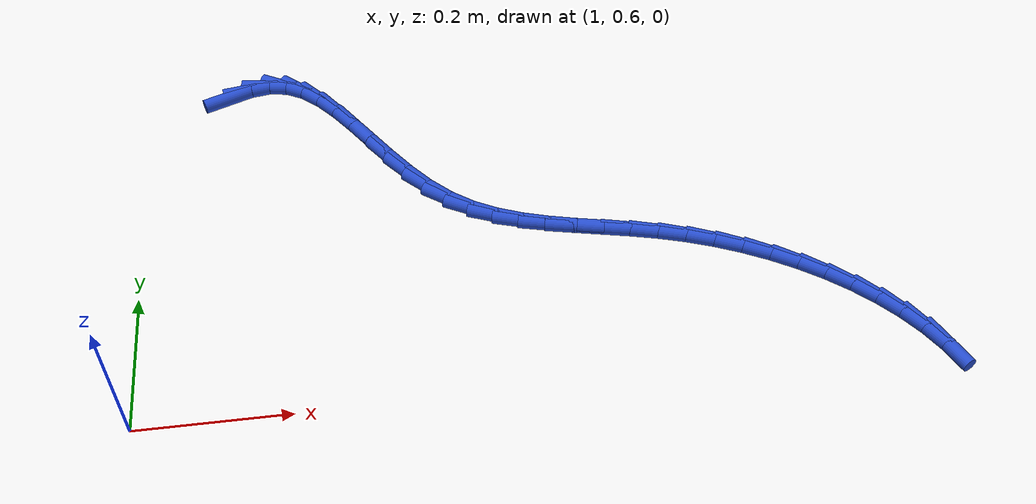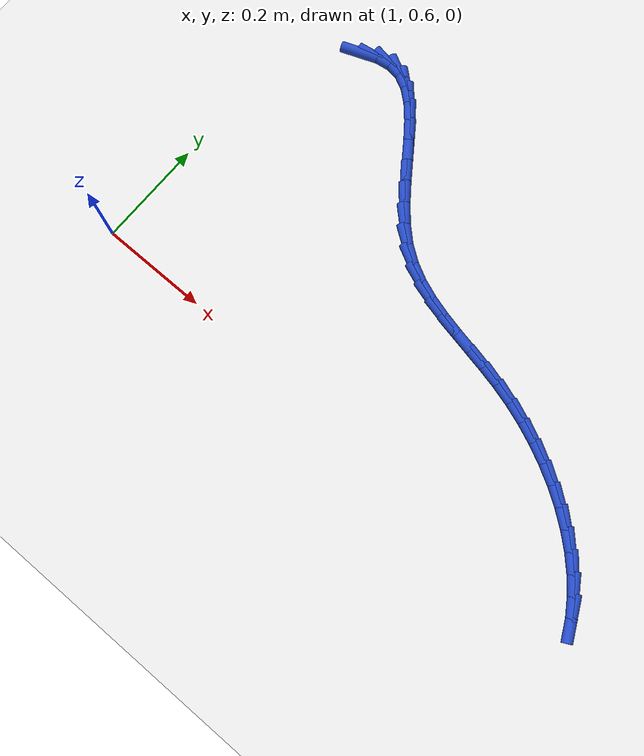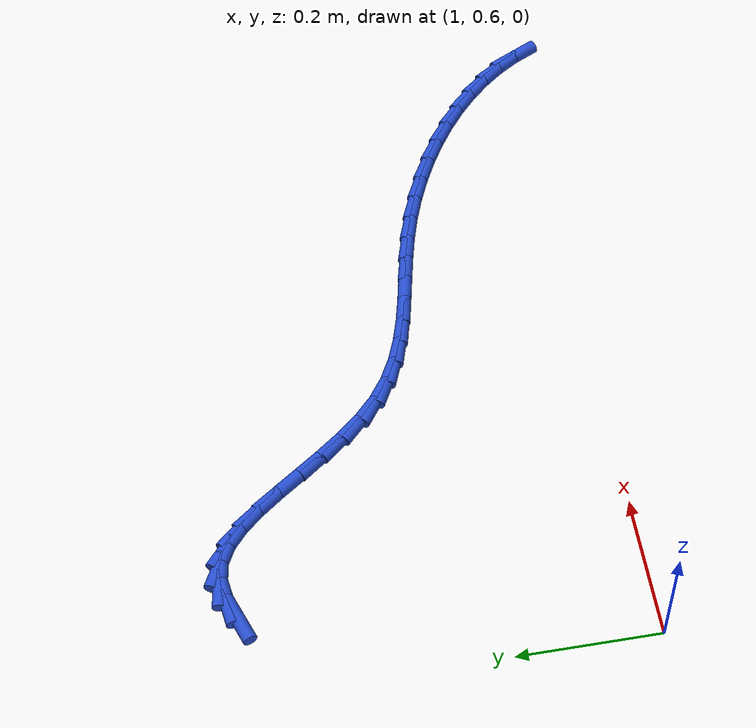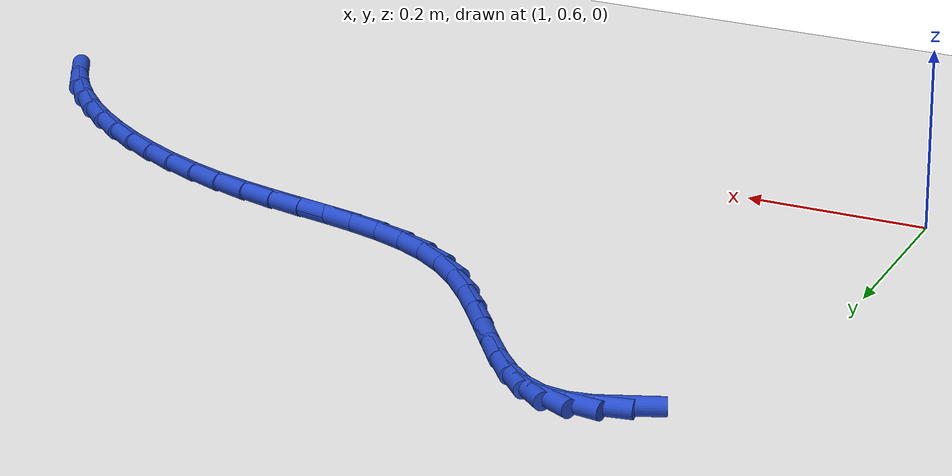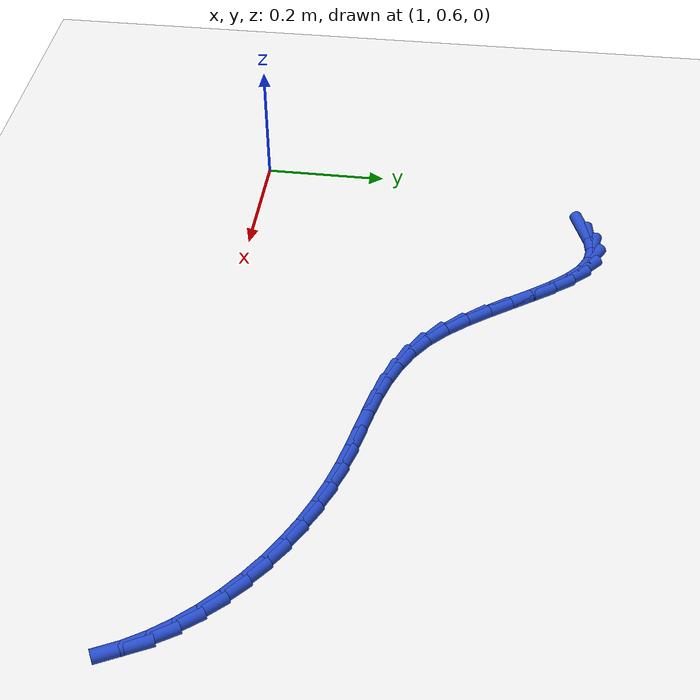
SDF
<sdf version="1.6">
 <world name="default">
  <model name="ground_plane">
   <static>1</static>
   <link name="link">
    <collision name="collision">
     <geometry><plane><normal>0 0 1</normal><size>100 100</size></plane></geometry>
     <surface><friction><ode><mu>100</mu><mu2>50</mu2></ode></friction></surface>
    </collision>
    <visual name="visual">
     <cast_shadows>0</cast_shadows>
     <geometry><plane><normal>0 0 1</normal><size>100 100</size></plane></geometry>
     <material>
      <script><uri>file://media/materials/scripts/gazebo.material</uri><name>Gazebo/WhiteGlow</name></script>
     </material>
    </visual>
   </link>
  </model>
  <model name="line">
   <link name="link_48">
    <pose>1.1157432887695589 1.1494872679140118 0.01 0 1.57 0.3585807426027486</pose>
    <collision name="collision">
     <geometry><cylinder><radius>0.01</radius><length>0.08</length></cylinder></geometry>
    </collision>
    <visual name="visual">
     <material>
      <script><name>Gazebo/Blue</name><uri>file://media/materials/scripts/gazebo.material</uri></script>
     </material>
     <geometry><cylinder><radius>0.01</radius><length>0.08</length></cylinder></geometry>
    </visual>
   </link>
   <link name="link_49">
    <pose>1.144190756865792 1.1601489061362231 0.01 0 1.57 0.1474515576269231</pose>
    <collision name="collision">
     <geometry><cylinder><radius>0.01</radius><length>0.08</length></cylinder></geometry>
    </collision>
    <visual name="visual">
     <material>
      <script><name>Gazebo/Blue</name><uri>file://media/materials/scripts/gazebo.material</uri></script>
     </material>
     <geometry><cylinder><radius>0.01</radius><length>0.08</length></cylinder></geometry>
    </visual>
   </link>
   <link name="link_50">
    <pose>1.1713180706431996 1.1641781141830592 0.01 0 1.57 -0.15076456251287718</pose>
    <collision name="collision">
     <geometry><cylinder><radius>0.01</radius><length>0.08</length></cylinder></geometry>
    </collision>
    <visual name="visual">
     <material>
      <script><name>Gazebo/Blue</name><uri>file://media/materials/scripts/gazebo.material</uri></script>
     </material>
     <geometry><cylinder><radius>0.01</radius><length>0.08</length></cylinder></geometry>
    </visual>
   </link>
   <link name="link_51">
    <pose>1.1970835482160538 1.1602638914919834 0.01 0 1.57 -0.4751864375075942</pose>
    <collision name="collision">
     <geometry><cylinder><radius>0.01</radius><length>0.08</length></cylinder></geometry>
    </collision>
    <visual name="visual">
     <material>
      <script><name>Gazebo/Blue</name><uri>file://media/materials/scripts/gazebo.material</uri></script>
     </material>
     <geometry><cylinder><radius>0.01</radius><length>0.08</length></cylinder></geometry>
    </visual>
   </link>
   <link name="link_52">
    <pose>1.2215325430095263 1.147684690976005 0.01 0 1.57 -0.7061386202762824</pose>
    <collision name="collision">
     <geometry><cylinder><radius>0.01</radius><length>0.08</length></cylinder></geometry>
    </collision>
    <visual name="visual">
     <material>
      <script><name>Gazebo/Blue</name><uri>file://media/materials/scripts/gazebo.material</uri></script>
     </material>
     <geometry><cylinder><radius>0.01</radius><length>0.08</length></cylinder></geometry>
    </visual>
   </link>
   <link name="link_53">
    <pose>1.244998758751948 1.1276718406124886 0.01 0 1.57 -0.8455970297754193</pose>
    <collision name="collision">
     <geometry><cylinder><radius>0.01</radius><length>0.08</length></cylinder></geometry>
    </collision>
    <visual name="visual">
     <material>
      <script><name>Gazebo/Blue</name><uri>file://media/materials/scripts/gazebo.material</uri></script>
     </material>
     <geometry><cylinder><radius>0.01</radius><length>0.08</length></cylinder></geometry>
    </visual>
   </link>
   <link name="link_54">
    <pose>1.2678755344581336 1.1018605530380166 0.01 0 1.57 -0.9230430249240104</pose>
    <collision name="collision">
     <geometry><cylinder><radius>0.01</radius><length>0.08</length></cylinder></geometry>
    </collision>
    <visual name="visual">
     <material>
      <script><name>Gazebo/Blue</name><uri>file://media/materials/scripts/gazebo.material</uri></script>
     </material>
     <geometry><cylinder><radius>0.01</radius><length>0.08</length></cylinder></geometry>
    </visual>
   </link>
   <link name="link_55">
    <pose>1.2905562091428973 1.071886040889172 0.01 0 1.57 -0.957470338299564</pose>
    <collision name="collision">
     <geometry><cylinder><radius>0.01</radius><length>0.08</length></cylinder></geometry>
    </collision>
    <visual name="visual">
     <material>
      <script><name>Gazebo/Blue</name><uri>file://media/materials/scripts/gazebo.material</uri></script>
     </material>
     <geometry><cylinder><radius>0.01</radius><length>0.08</length></cylinder></geometry>
    </visual>
   </link>
   <link name="link_56">
    <pose>1.3134341218210528 1.039383516802538 0.01 0 1.57 -0.9582285881067983</pose>
    <collision name="collision">
     <geometry><cylinder><radius>0.01</radius><length>0.08</length></cylinder></geometry>
    </collision>
    <visual name="visual">
     <material>
      <script><name>Gazebo/Blue</name><uri>file://media/materials/scripts/gazebo.material</uri></script>
     </material>
     <geometry><cylinder><radius>0.01</radius><length>0.08</length></cylinder></geometry>
    </visual>
   </link>
   <link name="link_57">
    <pose>1.336902611507415 1.0059881934146968 0.01 0 1.57 -0.928026247705119</pose>
    <collision name="collision">
     <geometry><cylinder><radius>0.01</radius><length>0.08</length></cylinder></geometry>
    </collision>
    <visual name="visual">
     <material>
      <script><name>Gazebo/Blue</name><uri>file://media/materials/scripts/gazebo.material</uri></script>
     </material>
     <geometry><cylinder><radius>0.01</radius><length>0.08</length></cylinder></geometry>
    </visual>
   </link>
   <link name="link_58">
    <pose>1.3613550172167972 0.973335283362232 0.01 0 1.57 -0.8644705898778409</pose>
    <collision name="collision">
     <geometry><cylinder><radius>0.01</radius><length>0.08</length></cylinder></geometry>
    </collision>
    <visual name="visual">
     <material>
      <script><name>Gazebo/Blue</name><uri>file://media/materials/scripts/gazebo.material</uri></script>
     </material>
     <geometry><cylinder><radius>0.01</radius><length>0.08</length></cylinder></geometry>
    </visual>
   </link>
   <link name="link_59">
    <pose>1.3871846779640138 0.943059999281726 0.01 0 1.57 -0.7605670192071126</pose>
    <collision name="collision">
     <geometry><cylinder><radius>0.01</radius><length>0.08</length></cylinder></geometry>
    </collision>
    <visual name="visual">
     <material>
      <script><name>Gazebo/Blue</name><uri>file://media/materials/scripts/gazebo.material</uri></script>
     </material>
     <geometry><cylinder><radius>0.01</radius><length>0.08</length></cylinder></geometry>
    </visual>
   </link>
   <link name="link_60">
    <pose>1.4147849201590197 0.9167975054093039 0.01 0 1.57 -0.6189108469968196</pose>
    <collision name="collision">
     <geometry><cylinder><radius>0.01</radius><length>0.08</length></cylinder></geometry>
    </collision>
    <visual name="visual">
     <material>
      <script><name>Gazebo/Blue</name><uri>file://media/materials/scripts/gazebo.material</uri></script>
     </material>
     <geometry><cylinder><radius>0.01</radius><length>0.08</length></cylinder></geometry>
    </visual>
   </link>
   <link name="link_61">
    <pose>1.44442045823639 0.8956891184690687 0.01 0 1.57 -0.48319615100054186</pose>
    <collision name="collision">
     <geometry><cylinder><radius>0.01</radius><length>0.08</length></cylinder></geometry>
    </collision>
    <visual name="visual">
     <material>
      <script><name>Gazebo/Blue</name><uri>file://media/materials/scripts/gazebo.material</uri></script>
     </material>
     <geometry><cylinder><radius>0.01</radius><length>0.08</length></cylinder></geometry>
    </visual>
   </link>
   <link name="link_62">
    <pose>1.475910828601771 0.8791667493436757 0.01 0 1.57 -0.3712610133999536</pose>
    <collision name="collision">
     <geometry><cylinder><radius>0.01</radius><length>0.08</length></cylinder></geometry>
    </collision>
    <visual name="visual">
     <material>
      <script><name>Gazebo/Blue</name><uri>file://media/materials/scripts/gazebo.material</uri></script>
     </material>
     <geometry><cylinder><radius>0.01</radius><length>0.08</length></cylinder></geometry>
    </visual>
   </link>
   <link name="link_63">
    <pose>1.5089793125426583 0.8662927060815383 0.01 0 1.57 -0.28751350593775454</pose>
    <collision name="collision">
     <geometry><cylinder><radius>0.01</radius><length>0.08</length></cylinder></geometry>
    </collision>
    <visual name="visual">
     <material>
      <script><name>Gazebo/Blue</name><uri>file://media/materials/scripts/gazebo.material</uri></script>
     </material>
     <geometry><cylinder><radius>0.01</radius><length>0.08</length></cylinder></geometry>
    </visual>
   </link>
   <link name="link_64">
    <pose>1.543349191346549 0.8561292967310701 0.01 0 1.57 -0.23275881774197626</pose>
    <collision name="collision">
     <geometry><cylinder><radius>0.01</radius><length>0.08</length></cylinder></geometry>
    </collision>
    <visual name="visual">
     <material>
      <script><name>Gazebo/Blue</name><uri>file://media/materials/scripts/gazebo.material</uri></script>
     </material>
     <geometry><cylinder><radius>0.01</radius><length>0.08</length></cylinder></geometry>
    </visual>
   </link>
   <link name="link_65">
    <pose>1.5787437463009388 0.8477388293406846 0.01 0 1.57 -0.2060722092925332</pose>
    <collision name="collision">
     <geometry><cylinder><radius>0.01</radius><length>0.08</length></cylinder></geometry>
    </collision>
    <visual name="visual">
     <material>
      <script><name>Gazebo/Blue</name><uri>file://media/materials/scripts/gazebo.material</uri></script>
     </material>
     <geometry><cylinder><radius>0.01</radius><length>0.08</length></cylinder></geometry>
    </visual>
   </link>
   <link name="link_66">
    <pose>1.6148862586933241 0.8401836119587954 0.01 0 1.57 -0.2061751643010123</pose>
    <collision name="collision">
     <geometry><cylinder><radius>0.01</radius><length>0.08</length></cylinder></geometry>
    </collision>
    <visual name="visual">
     <material>
      <script><name>Gazebo/Blue</name><uri>file://media/materials/scripts/gazebo.material</uri></script>
     </material>
     <geometry><cylinder><radius>0.01</radius><length>0.08</length></cylinder></geometry>
    </visual>
   </link>
   <link name="link_67">
    <pose>1.6515000098112014 0.8325259526338161 0.01 0 1.57 -0.23204353583484988</pose>
    <collision name="collision">
     <geometry><cylinder><radius>0.01</radius><length>0.08</length></cylinder></geometry>
    </collision>
    <visual name="visual">
     <material>
      <script><name>Gazebo/Blue</name><uri>file://media/materials/scripts/gazebo.material</uri></script>
     </material>
     <geometry><cylinder><radius>0.01</radius><length>0.08</length></cylinder></geometry>
    </visual>
   </link>
   <link name="link_68">
    <pose>1.688308280942067 0.8238281594141602 0.01 0 1.57 -0.28190662828971097</pose>
    <collision name="collision">
     <geometry><cylinder><radius>0.01</radius><length>0.08</length></cylinder></geometry>
    </collision>
    <visual name="visual">
     <material>
      <script><name>Gazebo/Blue</name><uri>file://media/materials/scripts/gazebo.material</uri></script>
     </material>
     <geometry><cylinder><radius>0.01</radius><length>0.08</length></cylinder></geometry>
    </visual>
   </link>
   <link name="link_69">
    <pose>1.725032950814366 0.8131919699556586 0.01 0 1.57 -0.34136410213897567</pose>
    <collision name="collision">
     <geometry><cylinder><radius>0.01</radius><length>0.08</length></cylinder></geometry>
    </collision>
    <visual name="visual">
     <material>
      <script><name>Gazebo/Blue</name><uri>file://media/materials/scripts/gazebo.material</uri></script>
     </material>
     <geometry><cylinder><radius>0.01</radius><length>0.08</length></cylinder></geometry>
    </visual>
   </link>
   <link name="link_70">
    <pose>1.761375936016205 0.80028030994824 0.01 0 1.57 -0.4008228046986829</pose>
    <collision name="collision">
     <geometry><cylinder><radius>0.01</radius><length>0.08</length></cylinder></geometry>
    </collision>
    <visual name="visual">
     <material>
      <script><name>Gazebo/Blue</name><uri>file://media/materials/scripts/gazebo.material</uri></script>
     </material>
     <geometry><cylinder><radius>0.01</radius><length>0.08</length></cylinder></geometry>
    </visual>
   </link>
   <link name="link_71">
    <pose>1.7970242938261642 0.7851738391805707 0.01 0 1.57 -0.46111446925910105</pose>
    <collision name="collision">
     <geometry><cylinder><radius>0.01</radius><length>0.08</length></cylinder></geometry>
    </collision>
    <visual name="visual">
     <material>
      <script><name>Gazebo/Blue</name><uri>file://media/materials/scripts/gazebo.material</uri></script>
     </material>
     <geometry><cylinder><radius>0.01</radius><length>0.08</length></cylinder></geometry>
    </visual>
   </link>
   <link name="link_72">
    <pose>1.8316647274926778 0.7679631701556641 0.01 0 1.57 -0.5233150710984057</pose>
    <collision name="collision">
     <geometry><cylinder><radius>0.01</radius><length>0.08</length></cylinder></geometry>
    </collision>
    <visual name="visual">
     <material>
      <script><name>Gazebo/Blue</name><uri>file://media/materials/scripts/gazebo.material</uri></script>
     </material>
     <geometry><cylinder><radius>0.01</radius><length>0.08</length></cylinder></geometry>
    </visual>
   </link>
   <link name="link_73">
    <pose>1.86498394026418 0.7487389153765343 0.01 0 1.57 -0.5885289566761714</pose>
    <collision name="collision">
     <geometry><cylinder><radius>0.01</radius><length>0.08</length></cylinder></geometry>
    </collision>
    <visual name="visual">
     <material>
      <script><name>Gazebo/Blue</name><uri>file://media/materials/scripts/gazebo.material</uri></script>
     </material>
     <geometry><cylinder><radius>0.01</radius><length>0.08</length></cylinder></geometry>
    </visual>
   </link>
   <link name="link_74">
    <pose>1.8966686353891054 0.727591687346194 0.01 0 1.57 -0.6579115562683078</pose>
    <collision name="collision">
     <geometry><cylinder><radius>0.01</radius><length>0.08</length></cylinder></geometry>
    </collision>
    <visual name="visual">
     <material>
      <script><name>Gazebo/Blue</name><uri>file://media/materials/scripts/gazebo.material</uri></script>
     </material>
     <geometry><cylinder><radius>0.01</radius><length>0.08</length></cylinder></geometry>
    </visual>
   </link>
   <link name="link_75">
    <pose>1.9264055161158897 0.7046120985676574 0.01 0 1.57 -0.7326772315131554</pose>
    <collision name="collision">
     <geometry><cylinder><radius>0.01</radius><length>0.08</length></cylinder></geometry>
    </collision>
    <visual name="visual">
     <material>
      <script><name>Gazebo/Blue</name><uri>file://media/materials/scripts/gazebo.material</uri></script>
     </material>
     <geometry><cylinder><radius>0.01</radius><length>0.08</length></cylinder></geometry>
    </visual>
   </link>
   <link name="link_76">
    <pose>1.953881285692966 0.6798907615439381 0.01 0 1.57 -0.8140815579215152</pose>
    <collision name="collision">
     <geometry><cylinder><radius>0.01</radius><length>0.08</length></cylinder></geometry>
    </collision>
    <visual name="visual">
     <material>
      <script><name>Gazebo/Blue</name><uri>file://media/materials/scripts/gazebo.material</uri></script>
     </material>
     <geometry><cylinder><radius>0.01</radius><length>0.08</length></cylinder></geometry>
    </visual>
   </link>
   <link name="link_77">
    <pose>1.9787826473687704 0.6535182887780493 0.01 0 1.57 -0.9033611643385854</pose>
    <collision name="collision">
     <geometry><cylinder><radius>0.01</radius><length>0.08</length></cylinder></geometry>
    </collision>
    <visual name="visual">
     <material>
      <script><name>Gazebo/Blue</name><uri>file://media/materials/scripts/gazebo.material</uri></script>
     </material>
     <geometry><cylinder><radius>0.01</radius><length>0.08</length></cylinder></geometry>
    </visual>
   </link>
   <link name="link_78">
    <pose>2.000796304391737 0.6255852927730049 0.01 0 1.57 -1.0016087225236967</pose>
    <collision name="collision">
     <geometry><cylinder><radius>0.01</radius><length>0.08</length></cylinder></geometry>
    </collision>
    <visual name="visual">
     <material>
      <script><name>Gazebo/Blue</name><uri>file://media/materials/scripts/gazebo.material</uri></script>
     </material>
     <geometry><cylinder><radius>0.01</radius><length>0.08</length></cylinder></geometry>
    </visual>
   </link>
   <link name="link_79">
    <pose>2.0196089600103 0.596182386031818 0.01 0 1.57 -1.1094890124063956</pose>
    <collision name="collision">
     <geometry><cylinder><radius>0.01</radius><length>0.08</length></cylinder></geometry>
    </collision>
    <visual name="visual">
     <material>
      <script><name>Gazebo/Blue</name><uri>file://media/materials/scripts/gazebo.material</uri></script>
     </material>
     <geometry><cylinder><radius>0.01</radius><length>0.08</length></cylinder></geometry>
    </visual>
   </link>
  </model>
 </world>
</sdf>
